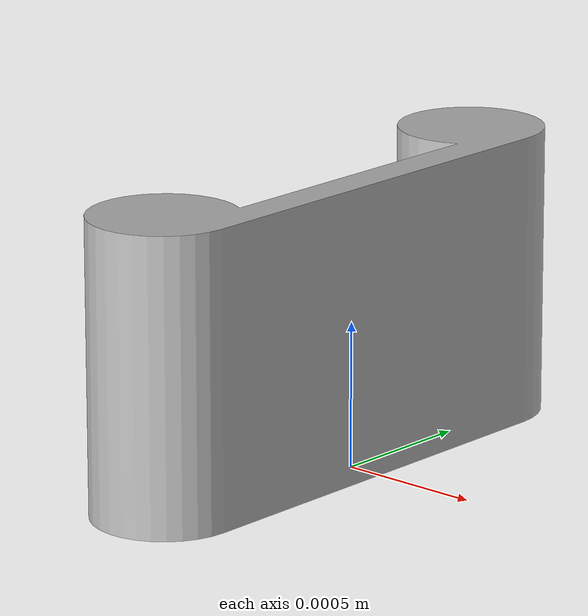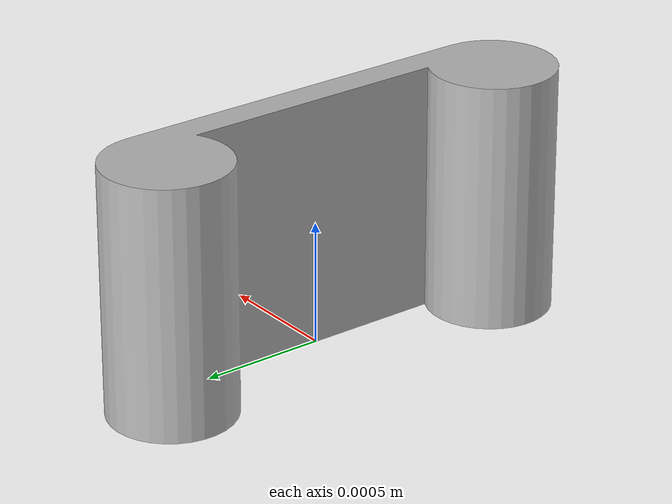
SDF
<?xml version="1.0" ?>
<sdf version="1.6">
  <model name="test2">
    <pose>0 0 0 0 0 0</pose>
    <static>true</static>
    <link name="body">
      <visual name="visual">
        <geometry>
          <mesh>
            <uri>model://test2/meshes/test2.dae</uri>
            <scale>0.004 0.004 0.004</scale>
          </mesh>
        </geometry>
      </visual>
      <collision name="collision">
        <geometry>
          <mesh>
            <uri>model://test2/meshes/test2.dae</uri>
            <scale>0.004 0.004 0.004</scale>
          </mesh>
        </geometry>
      </collision>
    </link>
  </model>
</sdf>
